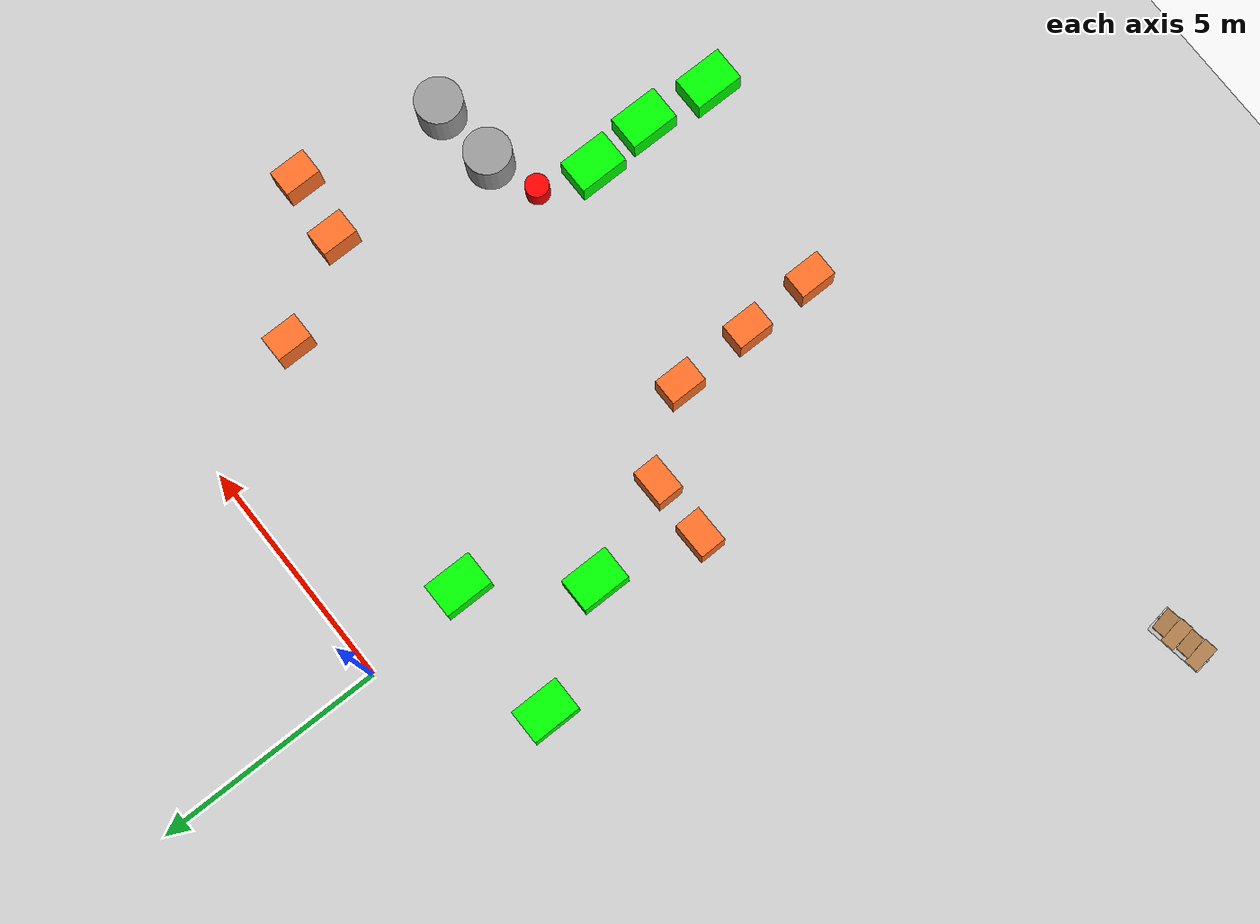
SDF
<sdf version="1.7">
 <world name="default">
  <model name="ground_plane">
   <static>1</static>
   <link name="link">
    <collision name="collision">
     <geometry><plane><normal>0 0 1</normal><size>100 100</size></plane></geometry>
     <surface>
      <contact><collide_bitmask>65535</collide_bitmask></contact>
      <friction><ode><mu>100</mu><mu2>50</mu2></ode></friction>
     </surface>
    </collision>
    <visual name="visual">
     <cast_shadows>0</cast_shadows>
     <geometry><plane><normal>0 0 1</normal><size>100 100</size></plane></geometry>
     <material>
      <script><uri>file://media/materials/scripts/gazebo.material</uri><name>Gazebo/Grey</name></script>
     </material>
    </visual>
   </link>
  </model>
  <model name="frc2016_chevaldefrise_clone">
   <link name="base">
    <inertial>
     <mass>10</mass>
     <pose>0 0 0.15672 0 -0 0</pose>
     <inertia><ixx>0.380221</ixx><ixy>0</ixy><ixz>0</ixz><iyy>1.43365</iyy><iyz>0</iyz><izz>1.64745</izz></inertia>
    </inertial>
    <visual name="platform">
     <pose>0 0 0.06968 0 -0 0</pose>
     <geometry><box><size>1.27 0.5969 0.003175</size></box></geometry>
    </visual>
    <collision name="platform">
     <pose>0 0 0.06968 0 -0 0</pose>
     <geometry><box><size>1.27 0.5969 0.003175</size></box></geometry>
    </collision>
    <visual name="bar">
     <pose>0 0 0.16855 0 1.5707 0</pose>
     <geometry><cylinder><radius>0.02108</radius><length>1.273</length></cylinder></geometry>
    </visual>
    <collision name="bar">
     <pose>0 0 0.16855 0 1.5707 0</pose>
     <geometry><cylinder><radius>0.02108</radius><length>1.27</length></cylinder></geometry>
    </collision>
    <visual name="castor1">
     <pose>-0.45653 -0.16581 0.03175 0 -0 0</pose>
     <geometry><sphere><radius>0.03175</radius></sphere></geometry>
    </visual>
    <collision name="castor1">
     <pose>-0.45653 -0.16581 0.03175 0 -0 0</pose>
     <geometry><sphere><radius>0.03175</radius></sphere></geometry>
    </collision>
    <visual name="castor2">
     <pose>-0.27855 0.21408 0.03175 0 -0 0</pose>
     <geometry><sphere><radius>0.03175</radius></sphere></geometry>
    </visual>
    <collision name="castor2">
     <pose>-0.27855 0.21408 0.03175 0 -0 0</pose>
     <geometry><sphere><radius>0.03175</radius></sphere></geometry>
    </collision>
    <visual name="castor3">
     <pose>0.28191 0.21419 0.03175 0 -0 0</pose>
     <geometry><sphere><radius>0.03175</radius></sphere></geometry>
    </visual>
    <collision name="castor3">
     <pose>0.28191 0.21419 0.03175 0 -0 0</pose>
     <geometry><sphere><radius>0.03175</radius></sphere></geometry>
    </collision>
    <visual name="castor4">
     <pose>0.45965 -0.16602 0.03175 0 -0 0</pose>
     <geometry><sphere><radius>0.03175</radius></sphere></geometry>
    </visual>
    <collision name="castor4">
     <pose>0.45965 -0.16602 0.03175 0 -0 0</pose>
     <geometry><sphere><radius>0.03175</radius></sphere></geometry>
    </collision>
   </link>
   <link name="slant1">
    <pose>-0.4572 0.01307 0.1997 -0.39732 0 0</pose>
    <inertial>
     <pose>0 0.1 0 0 -0 0</pose>
     <mass>2</mass>
     <inertia>
      <ixx>0.0606857</ixx>
      <ixy>0</ixy>
      <ixz>0</ixz>
      <iyy>0.0148723</iyy>
      <iyz>0</iyz>
      <izz>0.0755042</izz>
     </inertia>
    </inertial>
    <visual name="visual">
     <geometry><box><size>0.29845 0.593285 0.0127</size></box></geometry>
     <material><script><name>Gazebo/WoodFloor</name><uri>__default__</uri></script></material>
    </visual>
    <collision name="collision"><geometry><box><size>0.29845 0.593285 0.0127</size></box></geometry></collision>
   </link>
   <link name="slant2">
    <pose>-0.1524 -0.01307 0.1997 0.39732 -0 0</pose>
    <inertial>
     <mass>2</mass>
     <pose>0 -0.1 0 0 -0 0</pose>
     <inertia>
      <ixx>0.0606857</ixx>
      <ixy>0</ixy>
      <ixz>0</ixz>
      <iyy>0.0148723</iyy>
      <iyz>0</iyz>
      <izz>0.0755042</izz>
     </inertia>
    </inertial>
    <visual name="visual">
     <geometry><box><size>0.29845 0.593285 0.0127</size></box></geometry>
     <material><script><name>Gazebo/WoodFloor</name><uri>__default__</uri></script></material>
    </visual>
    <collision name="collision"><geometry><box><size>0.29845 0.593285 0.0127</size></box></geometry></collision>
   </link>
   <link name="slant3">
    <pose>0.1524 0.01307 0.1997 -0.39732 0 0</pose>
    <inertial>
     <pose>0 0.1 0 0 -0 0</pose>
     <mass>2</mass>
     <inertia>
      <ixx>0.0606857</ixx>
      <ixy>0</ixy>
      <ixz>0</ixz>
      <iyy>0.0148723</iyy>
      <iyz>0</iyz>
      <izz>0.0755042</izz>
     </inertia>
    </inertial>
    <visual name="visual">
     <geometry><box><size>0.29845 0.593285 0.0127</size></box></geometry>
     <material><script><name>Gazebo/WoodFloor</name><uri>__default__</uri></script></material>
    </visual>
    <collision name="collision"><geometry><box><size>0.29845 0.593285 0.0127</size></box></geometry></collision>
   </link>
   <link name="slant4">
    <pose>0.4572 -0.01307 0.1997 0.39732 -0 0</pose>
    <inertial>
     <pose>0 -0.1 0 0 -0 0</pose>
     <mass>2</mass>
     <inertia>
      <ixx>0.0606857</ixx>
      <ixy>0</ixy>
      <ixz>0</ixz>
      <iyy>0.0148723</iyy>
      <iyz>0</iyz>
      <izz>0.0755042</izz>
     </inertia>
    </inertial>
    <visual name="visual">
     <geometry><box><size>0.29845 0.593285 0.0127</size></box></geometry>
     <material><script><name>Gazebo/WoodFloor</name><uri>__default__</uri></script></material>
    </visual>
    <collision name="collision"><geometry><box><size>0.29845 0.593285 0.0127</size></box></geometry></collision>
   </link>
   <joint name="slant1_joint" type="revolute">
    <parent>base</parent>
    <child>slant1</child>
    <axis>
     <xyz>1 0 0</xyz>
     <limit><lower>0</lower><upper>1.5707</upper></limit>
     <dynamics><spring_reference>0</spring_reference><spring_stiffness>0</spring_stiffness></dynamics>
    </axis>
   </joint>
   <joint name="slant2_joint" type="revolute">
    <parent>base</parent>
    <child>slant2</child>
    <axis>
     <xyz>1 0 0</xyz>
     <limit><lower>-1.5707</lower><upper>0</upper></limit>
     <dynamics><spring_reference>0</spring_reference><spring_stiffness>0</spring_stiffness></dynamics>
    </axis>
   </joint>
   <joint name="slant3_joint" type="revolute">
    <parent>base</parent>
    <child>slant3</child>
    <axis>
     <xyz>1 0 0</xyz>
     <limit><lower>0</lower><upper>1.5707</upper></limit>
     <dynamics><spring_reference>0</spring_reference><spring_stiffness>0</spring_stiffness></dynamics>
    </axis>
   </joint>
   <joint name="slant4_joint" type="revolute">
    <parent>base</parent>
    <child>slant4</child>
    <axis>
     <xyz>1 0 0</xyz>
     <limit><lower>-1.5707</lower><upper>0</upper></limit>
     <dynamics><spring_reference>0</spring_reference><spring_stiffness>0</spring_stiffness></dynamics>
    </axis>
   </joint>
   <pose>-9.26855 -12.7493 -0 0 0 -2.97856</pose>
  </model>
  <model name="green_box_3">
   <link name="link">
    <inertial>
     <mass>1</mass>
     <inertia>
      <ixx>0.166667</ixx>
      <ixy>0</ixy>
      <ixz>0</ixz>
      <iyy>0.166667</iyy>
      <iyz>0</iyz>
      <izz>0.166667</izz>
     </inertia>
    </inertial>
    <visual name="visual">
     <geometry><box><size>0.75 1.07 0.63</size></box></geometry>
     <material>
      <script><name>Gazebo/Grey</name><uri>file://media/materials/scripts/gazebo.material</uri></script>
      <shader type="pixel"><normal_map>__default__</normal_map></shader>
      <ambient>0 1 0 1</ambient>
      <diffuse>0 1 0 1</diffuse>
      <specular>0.01 0.01 0.01 1</specular>
      <emissive>0 0 0 1</emissive>
     </material>
    </visual>
    <collision name="collision">
     <geometry><box><size>0.84 1 0.78</size></box></geometry>
     <surface>
      <friction>
       <ode><mu>1</mu><mu2>1</mu2><fdir1>0 0 0</fdir1><slip1>0</slip1><slip2>0</slip2></ode>
       <torsional>
        <coefficient>1</coefficient>
        <patch_radius>0</patch_radius>
        <surface_radius>0</surface_radius>
        <use_patch_radius>1</use_patch_radius>
        <ode><slip>0</slip></ode>
       </torsional>
      </friction>
      <bounce><restitution_coefficient>0</restitution_coefficient><threshold>1e+06</threshold></bounce>
      <contact>
       <collide_without_contact>0</collide_without_contact>
       <collide_without_contact_bitmask>1</collide_without_contact_bitmask>
       <collide_bitmask>1</collide_bitmask>
       <ode>
        <soft_cfm>0</soft_cfm>
        <soft_erp>0.2</soft_erp>
        <kp>1e+13</kp>
        <kd>1</kd>
        <max_vel>0.01</max_vel>
        <min_depth>0</min_depth>
       </ode>
       <bullet>
        <split_impulse>1</split_impulse>
        <split_impulse_penetration_threshold>-0.01</split_impulse_penetration_threshold>
        <soft_cfm>0</soft_cfm>
        <soft_erp>0.2</soft_erp>
        <kp>1e+13</kp>
        <kd>1</kd>
       </bullet>
      </contact>
     </surface>
    </collision>
   </link>
   <static>0</static>
   <pose>-2.69695 -2.19797 0.39 0 -0 0</pose>
  </model>
  <model name="green_box_4">
   <link name="link">
    <inertial>
     <mass>1</mass>
     <inertia>
      <ixx>0.166667</ixx>
      <ixy>0</ixy>
      <ixz>0</ixz>
      <iyy>0.166667</iyy>
      <iyz>0</iyz>
      <izz>0.166667</izz>
     </inertia>
    </inertial>
    <visual name="visual">
     <geometry><box><size>0.75 1.07 0.63</size></box></geometry>
     <material>
      <script><name>Gazebo/Grey</name><uri>file://media/materials/scripts/gazebo.material</uri></script>
      <shader type="pixel"><normal_map>__default__</normal_map></shader>
      <ambient>0 1 0 1</ambient>
      <diffuse>0 1 0 1</diffuse>
      <specular>0.01 0.01 0.01 1</specular>
      <emissive>0 0 0 1</emissive>
     </material>
    </visual>
    <collision name="collision">
     <geometry><box><size>0.84 1 0.78</size></box></geometry>
     <surface>
      <friction>
       <ode><mu>1</mu><mu2>1</mu2><fdir1>0 0 0</fdir1><slip1>0</slip1><slip2>0</slip2></ode>
       <torsional>
        <coefficient>1</coefficient>
        <patch_radius>0</patch_radius>
        <surface_radius>0</surface_radius>
        <use_patch_radius>1</use_patch_radius>
        <ode><slip>0</slip></ode>
       </torsional>
      </friction>
      <bounce><restitution_coefficient>0</restitution_coefficient><threshold>1e+06</threshold></bounce>
      <contact>
       <collide_without_contact>0</collide_without_contact>
       <collide_without_contact_bitmask>1</collide_without_contact_bitmask>
       <collide_bitmask>1</collide_bitmask>
       <ode>
        <soft_cfm>0</soft_cfm>
        <soft_erp>0.2</soft_erp>
        <kp>1e+13</kp>
        <kd>1</kd>
        <max_vel>0.01</max_vel>
        <min_depth>0</min_depth>
       </ode>
       <bullet>
        <split_impulse>1</split_impulse>
        <split_impulse_penetration_threshold>-0.01</split_impulse_penetration_threshold>
        <soft_cfm>0</soft_cfm>
        <soft_erp>0.2</soft_erp>
        <kp>1e+13</kp>
        <kd>1</kd>
       </bullet>
      </contact>
     </surface>
    </collision>
   </link>
   <static>0</static>
   <pose>0.261168 -2.36344 0.39 0 -0 0</pose>
  </model>
  <model name="green_box_5">
   <link name="link">
    <inertial>
     <mass>1</mass>
     <inertia>
      <ixx>0.166667</ixx>
      <ixy>0</ixy>
      <ixz>0</ixz>
      <iyy>0.166667</iyy>
      <iyz>0</iyz>
      <izz>0.166667</izz>
     </inertia>
    </inertial>
    <visual name="visual">
     <geometry><box><size>0.75 1.07 0.63</size></box></geometry>
     <material>
      <script><name>Gazebo/Grey</name><uri>file://media/materials/scripts/gazebo.material</uri></script>
      <shader type="pixel"><normal_map>__default__</normal_map></shader>
      <ambient>0 1 0 1</ambient>
      <diffuse>0 1 0 1</diffuse>
      <specular>0.01 0.01 0.01 1</specular>
      <emissive>0 0 0 1</emissive>
     </material>
    </visual>
    <collision name="collision">
     <geometry><box><size>0.84 1 0.78</size></box></geometry>
     <surface>
      <friction>
       <ode><mu>1</mu><mu2>1</mu2><fdir1>0 0 0</fdir1><slip1>0</slip1><slip2>0</slip2></ode>
       <torsional>
        <coefficient>1</coefficient>
        <patch_radius>0</patch_radius>
        <surface_radius>0</surface_radius>
        <use_patch_radius>1</use_patch_radius>
        <ode><slip>0</slip></ode>
       </torsional>
      </friction>
      <bounce><restitution_coefficient>0</restitution_coefficient><threshold>1e+06</threshold></bounce>
      <contact>
       <collide_without_contact>0</collide_without_contact>
       <collide_without_contact_bitmask>1</collide_without_contact_bitmask>
       <collide_bitmask>1</collide_bitmask>
       <ode>
        <soft_cfm>0</soft_cfm>
        <soft_erp>0.2</soft_erp>
        <kp>1e+13</kp>
        <kd>1</kd>
        <max_vel>0.01</max_vel>
        <min_depth>0</min_depth>
       </ode>
       <bullet>
        <split_impulse>1</split_impulse>
        <split_impulse_penetration_threshold>-0.01</split_impulse_penetration_threshold>
        <soft_cfm>0</soft_cfm>
        <soft_erp>0.2</soft_erp>
        <kp>1e+13</kp>
        <kd>1</kd>
       </bullet>
      </contact>
     </surface>
    </collision>
   </link>
   <static>0</static>
   <pose>-1.30017 -4.4988 0.39 0 -0 0</pose>
  </model>
  <model name="orange_box_1_clone_0">
   <link name="link">
    <inertial>
     <mass>1</mass>
     <inertia>
      <ixx>0.166667</ixx>
      <ixy>0</ixy>
      <ixz>0</ixz>
      <iyy>0.166667</iyy>
      <iyz>0</iyz>
      <izz>0.166667</izz>
     </inertia>
    </inertial>
    <visual name="visual">
     <geometry><box><size>0.57 0.8 0.8</size></box></geometry>
     <material>
      <script><name>Gazebo/Grey</name><uri>file://media/materials/scripts/gazebo.material</uri></script>
      <shader type="pixel"><normal_map>__default__</normal_map></shader>
      <ambient>0.698 0.369 0.176 1</ambient>
      <diffuse>1 0.435 0.153 1</diffuse>
      <specular>0.698 0.396 0.133 1</specular>
      <emissive>0.698 0.427 0.114 1</emissive>
     </material>
    </visual>
    <collision name="collision">
     <geometry><box><size>1 1 1</size></box></geometry>
     <surface>
      <friction>
       <ode><mu>1</mu><mu2>1</mu2><fdir1>0 0 0</fdir1><slip1>0</slip1><slip2>0</slip2></ode>
       <torsional>
        <coefficient>1</coefficient>
        <patch_radius>0</patch_radius>
        <surface_radius>0</surface_radius>
        <use_patch_radius>1</use_patch_radius>
        <ode><slip>0</slip></ode>
       </torsional>
      </friction>
      <bounce><restitution_coefficient>0</restitution_coefficient><threshold>1e+06</threshold></bounce>
      <contact>
       <collide_without_contact>0</collide_without_contact>
       <collide_without_contact_bitmask>1</collide_without_contact_bitmask>
       <collide_bitmask>1</collide_bitmask>
       <ode>
        <soft_cfm>0</soft_cfm>
        <soft_erp>0.2</soft_erp>
        <kp>1e+13</kp>
        <kd>1</kd>
        <max_vel>0.01</max_vel>
        <min_depth>0</min_depth>
       </ode>
       <bullet>
        <split_impulse>1</split_impulse>
        <split_impulse_penetration_threshold>-0.01</split_impulse_penetration_threshold>
        <soft_cfm>0</soft_cfm>
        <soft_erp>0.2</soft_erp>
        <kp>1e+13</kp>
        <kd>1</kd>
       </bullet>
      </contact>
     </surface>
    </collision>
   </link>
   <static>0</static>
   <pose>-1.87524 -6.63574 0.499995 -0 -1e-05 -1.55739</pose>
  </model>
  <model name="orange_box_1_clone_1">
   <link name="link">
    <inertial>
     <mass>1</mass>
     <inertia>
      <ixx>0.166667</ixx>
      <ixy>0</ixy>
      <ixz>0</ixz>
      <iyy>0.166667</iyy>
      <iyz>0</iyz>
      <izz>0.166667</izz>
     </inertia>
    </inertial>
    <visual name="visual">
     <geometry><box><size>0.57 0.8 0.8</size></box></geometry>
     <material>
      <script><name>Gazebo/Grey</name><uri>file://media/materials/scripts/gazebo.material</uri></script>
      <shader type="pixel"><normal_map>__default__</normal_map></shader>
      <ambient>0.698 0.369 0.176 1</ambient>
      <diffuse>1 0.435 0.153 1</diffuse>
      <specular>0.698 0.396 0.133 1</specular>
      <emissive>0.698 0.427 0.114 1</emissive>
     </material>
    </visual>
    <collision name="collision">
     <geometry><box><size>1 1 1</size></box></geometry>
     <surface>
      <friction>
       <ode><mu>1</mu><mu2>1</mu2><fdir1>0 0 0</fdir1><slip1>0</slip1><slip2>0</slip2></ode>
       <torsional>
        <coefficient>1</coefficient>
        <patch_radius>0</patch_radius>
        <surface_radius>0</surface_radius>
        <use_patch_radius>1</use_patch_radius>
        <ode><slip>0</slip></ode>
       </torsional>
      </friction>
      <bounce><restitution_coefficient>0</restitution_coefficient><threshold>1e+06</threshold></bounce>
      <contact>
       <collide_without_contact>0</collide_without_contact>
       <collide_without_contact_bitmask>1</collide_without_contact_bitmask>
       <collide_bitmask>1</collide_bitmask>
       <ode>
        <soft_cfm>0</soft_cfm>
        <soft_erp>0.2</soft_erp>
        <kp>1e+13</kp>
        <kd>1</kd>
        <max_vel>0.01</max_vel>
        <min_depth>0</min_depth>
       </ode>
       <bullet>
        <split_impulse>1</split_impulse>
        <split_impulse_penetration_threshold>-0.01</split_impulse_penetration_threshold>
        <soft_cfm>0</soft_cfm>
        <soft_erp>0.2</soft_erp>
        <kp>1e+13</kp>
        <kd>1</kd>
       </bullet>
      </contact>
     </surface>
    </collision>
   </link>
   <static>0</static>
   <pose>-0.560539 -6.63573 0.499995 -0 -1e-05 -1.55739</pose>
  </model>
  <model name="orange_box_2">
   <link name="link">
    <inertial>
     <mass>1</mass>
     <inertia>
      <ixx>0.166667</ixx>
      <ixy>0</ixy>
      <ixz>0</ixz>
      <iyy>0.166667</iyy>
      <iyz>0</iyz>
      <izz>0.166667</izz>
     </inertia>
    </inertial>
    <visual name="visual">
     <geometry><box><size>0.57 0.8 0.8</size></box></geometry>
     <material>
      <script><name>Gazebo/Grey</name><uri>file://media/materials/scripts/gazebo.material</uri></script>
      <shader type="pixel"><normal_map>__default__</normal_map></shader>
      <ambient>0.698 0.369 0.176 1</ambient>
      <diffuse>1 0.435 0.153 1</diffuse>
      <specular>0.698 0.396 0.133 1</specular>
      <emissive>0.698 0.427 0.114 1</emissive>
     </material>
    </visual>
    <collision name="collision">
     <geometry><box><size>1 1 1</size></box></geometry>
     <surface>
      <friction>
       <ode><mu>1</mu><mu2>1</mu2><fdir1>0 0 0</fdir1><slip1>0</slip1><slip2>0</slip2></ode>
       <torsional>
        <coefficient>1</coefficient>
        <patch_radius>0</patch_radius>
        <surface_radius>0</surface_radius>
        <use_patch_radius>1</use_patch_radius>
        <ode><slip>0</slip></ode>
       </torsional>
      </friction>
      <bounce><restitution_coefficient>0</restitution_coefficient><threshold>1e+06</threshold></bounce>
      <contact>
       <collide_without_contact>0</collide_without_contact>
       <collide_without_contact_bitmask>1</collide_without_contact_bitmask>
       <collide_bitmask>1</collide_bitmask>
       <ode>
        <soft_cfm>0</soft_cfm>
        <soft_erp>0.2</soft_erp>
        <kp>1e+13</kp>
        <kd>1</kd>
        <max_vel>0.01</max_vel>
        <min_depth>0</min_depth>
       </ode>
       <bullet>
        <split_impulse>1</split_impulse>
        <split_impulse_penetration_threshold>-0.01</split_impulse_penetration_threshold>
        <soft_cfm>0</soft_cfm>
        <soft_erp>0.2</soft_erp>
        <kp>1e+13</kp>
        <kd>1</kd>
       </bullet>
      </contact>
     </surface>
    </collision>
   </link>
   <static>0</static>
   <pose>0.71306 -8.19746 0.5 0 -0 0</pose>
  </model>
  <model name="orange_box_3">
   <link name="link">
    <inertial>
     <mass>1</mass>
     <inertia>
      <ixx>0.166667</ixx>
      <ixy>0</ixy>
      <ixz>0</ixz>
      <iyy>0.166667</iyy>
      <iyz>0</iyz>
      <izz>0.166667</izz>
     </inertia>
    </inertial>
    <visual name="visual">
     <geometry><box><size>0.57 0.8 0.8</size></box></geometry>
     <material>
      <script><name>Gazebo/Grey</name><uri>file://media/materials/scripts/gazebo.material</uri></script>
      <shader type="pixel"><normal_map>__default__</normal_map></shader>
      <ambient>0.698 0.369 0.176 1</ambient>
      <diffuse>1 0.435 0.153 1</diffuse>
      <specular>0.698 0.396 0.133 1</specular>
      <emissive>0.698 0.427 0.114 1</emissive>
     </material>
    </visual>
    <collision name="collision">
     <geometry><box><size>1 1 1</size></box></geometry>
     <surface>
      <friction>
       <ode><mu>1</mu><mu2>1</mu2><fdir1>0 0 0</fdir1><slip1>0</slip1><slip2>0</slip2></ode>
       <torsional>
        <coefficient>1</coefficient>
        <patch_radius>0</patch_radius>
        <surface_radius>0</surface_radius>
        <use_patch_radius>1</use_patch_radius>
        <ode><slip>0</slip></ode>
       </torsional>
      </friction>
      <bounce><restitution_coefficient>0</restitution_coefficient><threshold>1e+06</threshold></bounce>
      <contact>
       <collide_without_contact>0</collide_without_contact>
       <collide_without_contact_bitmask>1</collide_without_contact_bitmask>
       <collide_bitmask>1</collide_bitmask>
       <ode>
        <soft_cfm>0</soft_cfm>
        <soft_erp>0.2</soft_erp>
        <kp>1e+13</kp>
        <kd>1</kd>
        <max_vel>0.01</max_vel>
        <min_depth>0</min_depth>
       </ode>
       <bullet>
        <split_impulse>1</split_impulse>
        <split_impulse_penetration_threshold>-0.01</split_impulse_penetration_threshold>
        <soft_cfm>0</soft_cfm>
        <soft_erp>0.2</soft_erp>
        <kp>1e+13</kp>
        <kd>1</kd>
       </bullet>
      </contact>
     </surface>
    </collision>
   </link>
   <static>0</static>
   <pose>0.754165 -9.92309 0.5 0 -0 0</pose>
  </model>
  <model name="orange_box_4">
   <link name="link">
    <inertial>
     <mass>1</mass>
     <inertia>
      <ixx>0.166667</ixx>
      <ixy>0</ixy>
      <ixz>0</ixz>
      <iyy>0.166667</iyy>
      <iyz>0</iyz>
      <izz>0.166667</izz>
     </inertia>
    </inertial>
    <visual name="visual">
     <geometry><box><size>0.57 0.8 0.8</size></box></geometry>
     <material>
      <script><name>Gazebo/Grey</name><uri>file://media/materials/scripts/gazebo.material</uri></script>
      <shader type="pixel"><normal_map>__default__</normal_map></shader>
      <ambient>0.698 0.369 0.176 1</ambient>
      <diffuse>1 0.435 0.153 1</diffuse>
      <specular>0.698 0.396 0.133 1</specular>
      <emissive>0.698 0.427 0.114 1</emissive>
     </material>
    </visual>
    <collision name="collision">
     <geometry><box><size>1 1 1</size></box></geometry>
     <surface>
      <friction>
       <ode><mu>1</mu><mu2>1</mu2><fdir1>0 0 0</fdir1><slip1>0</slip1><slip2>0</slip2></ode>
       <torsional>
        <coefficient>1</coefficient>
        <patch_radius>0</patch_radius>
        <surface_radius>0</surface_radius>
        <use_patch_radius>1</use_patch_radius>
        <ode><slip>0</slip></ode>
       </torsional>
      </friction>
      <bounce><restitution_coefficient>0</restitution_coefficient><threshold>1e+06</threshold></bounce>
      <contact>
       <collide_without_contact>0</collide_without_contact>
       <collide_without_contact_bitmask>1</collide_without_contact_bitmask>
       <collide_bitmask>1</collide_bitmask>
       <ode>
        <soft_cfm>0</soft_cfm>
        <soft_erp>0.2</soft_erp>
        <kp>1e+13</kp>
        <kd>1</kd>
        <max_vel>0.01</max_vel>
        <min_depth>0</min_depth>
       </ode>
       <bullet>
        <split_impulse>1</split_impulse>
        <split_impulse_penetration_threshold>-0.01</split_impulse_penetration_threshold>
        <soft_cfm>0</soft_cfm>
        <soft_erp>0.2</soft_erp>
        <kp>1e+13</kp>
        <kd>1</kd>
       </bullet>
      </contact>
     </surface>
    </collision>
   </link>
   <static>0</static>
   <pose>0.79527 -11.525 0.5 0 -0 0</pose>
  </model>
  <model name="green_box_7">
   <link name="link">
    <inertial>
     <mass>1</mass>
     <inertia>
      <ixx>0.166667</ixx>
      <ixy>0</ixy>
      <ixz>0</ixz>
      <iyy>0.166667</iyy>
      <iyz>0</iyz>
      <izz>0.166667</izz>
     </inertia>
    </inertial>
    <visual name="visual">
     <geometry><box><size>0.75 1.07 0.63</size></box></geometry>
     <material>
      <script><name>Gazebo/Grey</name><uri>file://media/materials/scripts/gazebo.material</uri></script>
      <shader type="pixel"><normal_map>__default__</normal_map></shader>
      <ambient>0 1 0 1</ambient>
      <diffuse>0 1 0 1</diffuse>
      <specular>0.01 0.01 0.01 1</specular>
      <emissive>0 0 0 1</emissive>
     </material>
    </visual>
    <collision name="collision">
     <geometry><box><size>0.84 1 0.78</size></box></geometry>
     <surface>
      <friction>
       <ode><mu>1</mu><mu2>1</mu2><fdir1>0 0 0</fdir1><slip1>0</slip1><slip2>0</slip2></ode>
       <torsional>
        <coefficient>1</coefficient>
        <patch_radius>0</patch_radius>
        <surface_radius>0</surface_radius>
        <use_patch_radius>1</use_patch_radius>
        <ode><slip>0</slip></ode>
       </torsional>
      </friction>
      <bounce><restitution_coefficient>0</restitution_coefficient><threshold>1e+06</threshold></bounce>
      <contact>
       <collide_without_contact>0</collide_without_contact>
       <collide_without_contact_bitmask>1</collide_without_contact_bitmask>
       <collide_bitmask>1</collide_bitmask>
       <ode>
        <soft_cfm>0</soft_cfm>
        <soft_erp>0.2</soft_erp>
        <kp>1e+13</kp>
        <kd>1</kd>
        <max_vel>0.01</max_vel>
        <min_depth>0</min_depth>
       </ode>
       <bullet>
        <split_impulse>1</split_impulse>
        <split_impulse_penetration_threshold>-0.01</split_impulse_penetration_threshold>
        <soft_cfm>0</soft_cfm>
        <soft_erp>0.2</soft_erp>
        <kp>1e+13</kp>
        <kd>1</kd>
       </bullet>
      </contact>
     </surface>
    </collision>
   </link>
   <static>0</static>
   <pose>5.32353 -9.63801 0.39 0 -0 0</pose>
  </model>
  <model name="green_box_8">
   <link name="link">
    <inertial>
     <mass>1</mass>
     <inertia>
      <ixx>0.166667</ixx>
      <ixy>0</ixy>
      <ixz>0</ixz>
      <iyy>0.166667</iyy>
      <iyz>0</iyz>
      <izz>0.166667</izz>
     </inertia>
    </inertial>
    <visual name="visual">
     <geometry><box><size>0.75 1.07 0.63</size></box></geometry>
     <material>
      <script><name>Gazebo/Grey</name><uri>file://media/materials/scripts/gazebo.material</uri></script>
      <shader type="pixel"><normal_map>__default__</normal_map></shader>
      <ambient>0 1 0 1</ambient>
      <diffuse>0 1 0 1</diffuse>
      <specular>0.01 0.01 0.01 1</specular>
      <emissive>0 0 0 1</emissive>
     </material>
    </visual>
    <collision name="collision">
     <geometry><box><size>0.84 1 0.78</size></box></geometry>
     <surface>
      <friction>
       <ode><mu>1</mu><mu2>1</mu2><fdir1>0 0 0</fdir1><slip1>0</slip1><slip2>0</slip2></ode>
       <torsional>
        <coefficient>1</coefficient>
        <patch_radius>0</patch_radius>
        <surface_radius>0</surface_radius>
        <use_patch_radius>1</use_patch_radius>
        <ode><slip>0</slip></ode>
       </torsional>
      </friction>
      <bounce><restitution_coefficient>0</restitution_coefficient><threshold>1e+06</threshold></bounce>
      <contact>
       <collide_without_contact>0</collide_without_contact>
       <collide_without_contact_bitmask>1</collide_without_contact_bitmask>
       <collide_bitmask>1</collide_bitmask>
       <ode>
        <soft_cfm>0</soft_cfm>
        <soft_erp>0.2</soft_erp>
        <kp>1e+13</kp>
        <kd>1</kd>
        <max_vel>0.01</max_vel>
        <min_depth>0</min_depth>
       </ode>
       <bullet>
        <split_impulse>1</split_impulse>
        <split_impulse_penetration_threshold>-0.01</split_impulse_penetration_threshold>
        <soft_cfm>0</soft_cfm>
        <soft_erp>0.2</soft_erp>
        <kp>1e+13</kp>
        <kd>1</kd>
       </bullet>
      </contact>
     </surface>
    </collision>
   </link>
   <static>0</static>
   <pose>5.4058 -10.995 0.39 0 -0 0</pose>
  </model>
  <model name="green_box_9">
   <link name="link">
    <inertial>
     <mass>1</mass>
     <inertia>
      <ixx>0.166667</ixx>
      <ixy>0</ixy>
      <ixz>0</ixz>
      <iyy>0.166667</iyy>
      <iyz>0</iyz>
      <izz>0.166667</izz>
     </inertia>
    </inertial>
    <visual name="visual">
     <geometry><box><size>0.75 1.07 0.63</size></box></geometry>
     <material>
      <script><name>Gazebo/Grey</name><uri>file://media/materials/scripts/gazebo.material</uri></script>
      <shader type="pixel"><normal_map>__default__</normal_map></shader>
      <ambient>0 1 0 1</ambient>
      <diffuse>0 1 0 1</diffuse>
      <specular>0.01 0.01 0.01 1</specular>
      <emissive>0 0 0 1</emissive>
     </material>
    </visual>
    <collision name="collision">
     <geometry><box><size>0.84 1 0.78</size></box></geometry>
     <surface>
      <friction>
       <ode><mu>1</mu><mu2>1</mu2><fdir1>0 0 0</fdir1><slip1>0</slip1><slip2>0</slip2></ode>
       <torsional>
        <coefficient>1</coefficient>
        <patch_radius>0</patch_radius>
        <surface_radius>0</surface_radius>
        <use_patch_radius>1</use_patch_radius>
        <ode><slip>0</slip></ode>
       </torsional>
      </friction>
      <bounce><restitution_coefficient>0</restitution_coefficient><threshold>1e+06</threshold></bounce>
      <contact>
       <collide_without_contact>0</collide_without_contact>
       <collide_without_contact_bitmask>1</collide_without_contact_bitmask>
       <collide_bitmask>1</collide_bitmask>
       <ode>
        <soft_cfm>0</soft_cfm>
        <soft_erp>0.2</soft_erp>
        <kp>1e+13</kp>
        <kd>1</kd>
        <max_vel>0.01</max_vel>
        <min_depth>0</min_depth>
       </ode>
       <bullet>
        <split_impulse>1</split_impulse>
        <split_impulse_penetration_threshold>-0.01</split_impulse_penetration_threshold>
        <soft_cfm>0</soft_cfm>
        <soft_erp>0.2</soft_erp>
        <kp>1e+13</kp>
        <kd>1</kd>
       </bullet>
      </contact>
     </surface>
    </collision>
   </link>
   <static>0</static>
   <pose>5.2403 -12.5149 0.39 0 -0 0</pose>
  </model>
  <model name="unit_cylinder">
   <link name="link">
    <inertial>
     <mass>1</mass>
     <inertia><ixx>0.145833</ixx><ixy>0</ixy><ixz>0</ixz><iyy>0.145833</iyy><iyz>0</iyz><izz>0.125</izz></inertia>
    </inertial>
    <visual name="visual">
     <geometry><cylinder><radius>0.5</radius><length>1</length></cylinder></geometry>
     <material>
      <script><name>Gazebo/Grey</name><uri>file://media/materials/scripts/gazebo.material</uri></script>
      <shader type="pixel"/>
     </material>
    </visual>
    <collision name="collision">
     <geometry><cylinder><radius>0.5</radius><length>1</length></cylinder></geometry>
     <surface>
      <friction>
       <ode><mu>1</mu><mu2>1</mu2><fdir1>0 0 0</fdir1><slip1>0</slip1><slip2>0</slip2></ode>
       <torsional>
        <coefficient>1</coefficient>
        <patch_radius>0</patch_radius>
        <surface_radius>0</surface_radius>
        <use_patch_radius>1</use_patch_radius>
        <ode><slip>0</slip></ode>
       </torsional>
      </friction>
      <bounce><restitution_coefficient>0</restitution_coefficient><threshold>1e+06</threshold></bounce>
      <contact>
       <collide_without_contact>0</collide_without_contact>
       <collide_without_contact_bitmask>1</collide_without_contact_bitmask>
       <collide_bitmask>1</collide_bitmask>
       <ode>
        <soft_cfm>0</soft_cfm>
        <soft_erp>0.2</soft_erp>
        <kp>1e+13</kp>
        <kd>1</kd>
        <max_vel>0.01</max_vel>
        <min_depth>0</min_depth>
       </ode>
       <bullet>
        <split_impulse>1</split_impulse>
        <split_impulse_penetration_threshold>-0.01</split_impulse_penetration_threshold>
        <soft_cfm>0</soft_cfm>
        <soft_erp>0.2</soft_erp>
        <kp>1e+13</kp>
        <kd>1</kd>
       </bullet>
      </contact>
     </surface>
    </collision>
   </link>
   <static>0</static>
   <pose>8.15818 -7.95376 0.499991 0 -0 0</pose>
  </model>
  <model name="unit_cylinder_0">
   <link name="link">
    <inertial>
     <mass>1</mass>
     <inertia><ixx>0.145833</ixx><ixy>0</ixy><ixz>0</ixz><iyy>0.145833</iyy><iyz>0</iyz><izz>0.125</izz></inertia>
    </inertial>
    <visual name="visual">
     <geometry><cylinder><radius>0.5</radius><length>1</length></cylinder></geometry>
     <material>
      <script><name>Gazebo/Grey</name><uri>file://media/materials/scripts/gazebo.material</uri></script>
      <shader type="pixel"/>
     </material>
    </visual>
    <collision name="collision">
     <geometry><cylinder><radius>0.5</radius><length>1</length></cylinder></geometry>
     <surface>
      <friction>
       <ode><mu>1</mu><mu2>1</mu2><fdir1>0 0 0</fdir1><slip1>0</slip1><slip2>0</slip2></ode>
       <torsional>
        <coefficient>1</coefficient>
        <patch_radius>0</patch_radius>
        <surface_radius>0</surface_radius>
        <use_patch_radius>1</use_patch_radius>
        <ode><slip>0</slip></ode>
       </torsional>
      </friction>
      <bounce><restitution_coefficient>0</restitution_coefficient><threshold>1e+06</threshold></bounce>
      <contact>
       <collide_without_contact>0</collide_without_contact>
       <collide_without_contact_bitmask>1</collide_without_contact_bitmask>
       <collide_bitmask>1</collide_bitmask>
       <ode>
        <soft_cfm>0</soft_cfm>
        <soft_erp>0.2</soft_erp>
        <kp>1e+13</kp>
        <kd>1</kd>
        <max_vel>0.01</max_vel>
        <min_depth>0</min_depth>
       </ode>
       <bullet>
        <split_impulse>1</split_impulse>
        <split_impulse_penetration_threshold>-0.01</split_impulse_penetration_threshold>
        <soft_cfm>0</soft_cfm>
        <soft_erp>0.2</soft_erp>
        <kp>1e+13</kp>
        <kd>1</kd>
       </bullet>
      </contact>
     </surface>
    </collision>
   </link>
   <static>0</static>
   <pose>6.72034 -8.07799 0.5 0 -0 0</pose>
  </model>
  <model name="cylinder_3_0">
   <link name="link">
    <inertial>
     <mass>0.89</mass>
     <inertia>
      <ixx>0.129792</ixx>
      <ixy>0</ixy>
      <ixz>0</ixz>
      <iyy>0.129792</iyy>
      <iyz>0</iyz>
      <izz>0.11125</izz>
     </inertia>
    </inertial>
    <visual name="visual">
     <geometry><cylinder><radius>0.25</radius><length>0.54</length></cylinder></geometry>
     <material>
      <script><name>Gazebo/Grey</name><uri>file://media/materials/scripts/gazebo.material</uri></script>
      <shader type="pixel"><normal_map>__default__</normal_map></shader>
      <ambient>1 0 0 1</ambient>
      <diffuse>0.7 0.7 0.7 1</diffuse>
      <specular>0.01 0.01 0.01 1</specular>
      <emissive>0 0 0 1</emissive>
     </material>
    </visual>
    <collision name="collision">
     <geometry><cylinder><radius>0.5</radius><length>1</length></cylinder></geometry>
     <surface>
      <friction>
       <ode><mu>1</mu><mu2>1</mu2><fdir1>0 0 0</fdir1><slip1>0</slip1><slip2>0</slip2></ode>
       <torsional>
        <coefficient>1</coefficient>
        <patch_radius>0</patch_radius>
        <surface_radius>0</surface_radius>
        <use_patch_radius>1</use_patch_radius>
        <ode><slip>0</slip></ode>
       </torsional>
      </friction>
      <bounce><restitution_coefficient>0</restitution_coefficient><threshold>1e+06</threshold></bounce>
      <contact>
       <collide_without_contact>0</collide_without_contact>
       <collide_without_contact_bitmask>1</collide_without_contact_bitmask>
       <collide_bitmask>1</collide_bitmask>
       <ode>
        <soft_cfm>0</soft_cfm>
        <soft_erp>0.2</soft_erp>
        <kp>1e+13</kp>
        <kd>1</kd>
        <max_vel>0.01</max_vel>
        <min_depth>0</min_depth>
       </ode>
       <bullet>
        <split_impulse>1</split_impulse>
        <split_impulse_penetration_threshold>-0.01</split_impulse_penetration_threshold>
        <soft_cfm>0</soft_cfm>
        <soft_erp>0.2</soft_erp>
        <kp>1e+13</kp>
        <kd>1</kd>
       </bullet>
      </contact>
     </surface>
    </collision>
   </link>
   <static>0</static>
   <pose>5.61105 -8.44751 0.5 -0 -0 -0</pose>
  </model>
  <model name="orange_box_6">
   <link name="link">
    <inertial>
     <mass>1</mass>
     <inertia>
      <ixx>0.166667</ixx>
      <ixy>0</ixy>
      <ixz>0</ixz>
      <iyy>0.166667</iyy>
      <iyz>0</iyz>
      <izz>0.166667</izz>
     </inertia>
    </inertial>
    <visual name="visual">
     <geometry><box><size>0.57 0.8 0.8</size></box></geometry>
     <material>
      <script><name>Gazebo/Grey</name><uri>file://media/materials/scripts/gazebo.material</uri></script>
      <shader type="pixel"><normal_map>__default__</normal_map></shader>
      <ambient>0.698 0.369 0.176 1</ambient>
      <diffuse>1 0.435 0.153 1</diffuse>
      <specular>0.698 0.396 0.133 1</specular>
      <emissive>0.698 0.427 0.114 1</emissive>
     </material>
    </visual>
    <collision name="collision">
     <geometry><box><size>1 1 1</size></box></geometry>
     <surface>
      <friction>
       <ode><mu>1</mu><mu2>1</mu2><fdir1>0 0 0</fdir1><slip1>0</slip1><slip2>0</slip2></ode>
       <torsional>
        <coefficient>1</coefficient>
        <patch_radius>0</patch_radius>
        <surface_radius>0</surface_radius>
        <use_patch_radius>1</use_patch_radius>
        <ode><slip>0</slip></ode>
       </torsional>
      </friction>
      <bounce><restitution_coefficient>0</restitution_coefficient><threshold>1e+06</threshold></bounce>
      <contact>
       <collide_without_contact>0</collide_without_contact>
       <collide_without_contact_bitmask>1</collide_without_contact_bitmask>
       <collide_bitmask>1</collide_bitmask>
       <ode>
        <soft_cfm>0</soft_cfm>
        <soft_erp>0.2</soft_erp>
        <kp>1e+13</kp>
        <kd>1</kd>
        <max_vel>0.01</max_vel>
        <min_depth>0</min_depth>
       </ode>
       <bullet>
        <split_impulse>1</split_impulse>
        <split_impulse_penetration_threshold>-0.01</split_impulse_penetration_threshold>
        <soft_cfm>0</soft_cfm>
        <soft_erp>0.2</soft_erp>
        <kp>1e+13</kp>
        <kd>1</kd>
       </bullet>
      </contact>
     </surface>
    </collision>
   </link>
   <static>0</static>
   <pose>8.77445 -4.83264 0.5 0 -0 0</pose>
  </model>
  <model name="orange_box_7">
   <link name="link">
    <inertial>
     <mass>1</mass>
     <inertia>
      <ixx>0.166667</ixx>
      <ixy>0</ixy>
      <ixz>0</ixz>
      <iyy>0.166667</iyy>
      <iyz>0</iyz>
      <izz>0.166667</izz>
     </inertia>
    </inertial>
    <visual name="visual">
     <geometry><box><size>0.57 0.8 0.8</size></box></geometry>
     <material>
      <script><name>Gazebo/Grey</name><uri>file://media/materials/scripts/gazebo.material</uri></script>
      <shader type="pixel"><normal_map>__default__</normal_map></shader>
      <ambient>0.698 0.369 0.176 1</ambient>
      <diffuse>1 0.435 0.153 1</diffuse>
      <specular>0.698 0.396 0.133 1</specular>
      <emissive>0.698 0.427 0.114 1</emissive>
     </material>
    </visual>
    <collision name="collision">
     <geometry><box><size>1 1 1</size></box></geometry>
     <surface>
      <friction>
       <ode><mu>1</mu><mu2>1</mu2><fdir1>0 0 0</fdir1><slip1>0</slip1><slip2>0</slip2></ode>
       <torsional>
        <coefficient>1</coefficient>
        <patch_radius>0</patch_radius>
        <surface_radius>0</surface_radius>
        <use_patch_radius>1</use_patch_radius>
        <ode><slip>0</slip></ode>
       </torsional>
      </friction>
      <bounce><restitution_coefficient>0</restitution_coefficient><threshold>1e+06</threshold></bounce>
      <contact>
       <collide_without_contact>0</collide_without_contact>
       <collide_without_contact_bitmask>1</collide_without_contact_bitmask>
       <collide_bitmask>1</collide_bitmask>
       <ode>
        <soft_cfm>0</soft_cfm>
        <soft_erp>0.2</soft_erp>
        <kp>1e+13</kp>
        <kd>1</kd>
        <max_vel>0.01</max_vel>
        <min_depth>0</min_depth>
       </ode>
       <bullet>
        <split_impulse>1</split_impulse>
        <split_impulse_penetration_threshold>-0.01</split_impulse_penetration_threshold>
        <soft_cfm>0</soft_cfm>
        <soft_erp>0.2</soft_erp>
        <kp>1e+13</kp>
        <kd>1</kd>
       </bullet>
      </contact>
     </surface>
    </collision>
   </link>
   <static>0</static>
   <pose>7.3366 -4.66824 0.5 0 -0 0</pose>
  </model>
  <model name="orange_box_8">
   <link name="link">
    <inertial>
     <mass>1</mass>
     <inertia>
      <ixx>0.166667</ixx>
      <ixy>0</ixy>
      <ixz>0</ixz>
      <iyy>0.166667</iyy>
      <iyz>0</iyz>
      <izz>0.166667</izz>
     </inertia>
    </inertial>
    <visual name="visual">
     <geometry><box><size>0.57 0.8 0.8</size></box></geometry>
     <material>
      <script><name>Gazebo/Grey</name><uri>file://media/materials/scripts/gazebo.material</uri></script>
      <shader type="pixel"><normal_map>__default__</normal_map></shader>
      <ambient>0.698 0.369 0.176 1</ambient>
      <diffuse>1 0.435 0.153 1</diffuse>
      <specular>0.698 0.396 0.133 1</specular>
      <emissive>0.698 0.427 0.114 1</emissive>
     </material>
    </visual>
    <collision name="collision">
     <geometry><box><size>1 1 1</size></box></geometry>
     <surface>
      <friction>
       <ode><mu>1</mu><mu2>1</mu2><fdir1>0 0 0</fdir1><slip1>0</slip1><slip2>0</slip2></ode>
       <torsional>
        <coefficient>1</coefficient>
        <patch_radius>0</patch_radius>
        <surface_radius>0</surface_radius>
        <use_patch_radius>1</use_patch_radius>
        <ode><slip>0</slip></ode>
       </torsional>
      </friction>
      <bounce><restitution_coefficient>0</restitution_coefficient><threshold>1e+06</threshold></bounce>
      <contact>
       <collide_without_contact>0</collide_without_contact>
       <collide_without_contact_bitmask>1</collide_without_contact_bitmask>
       <collide_bitmask>1</collide_bitmask>
       <ode>
        <soft_cfm>0</soft_cfm>
        <soft_erp>0.2</soft_erp>
        <kp>1e+13</kp>
        <kd>1</kd>
        <max_vel>0.01</max_vel>
        <min_depth>0</min_depth>
       </ode>
       <bullet>
        <split_impulse>1</split_impulse>
        <split_impulse_penetration_threshold>-0.01</split_impulse_penetration_threshold>
        <soft_cfm>0</soft_cfm>
        <soft_erp>0.2</soft_erp>
        <kp>1e+13</kp>
        <kd>1</kd>
       </bullet>
      </contact>
     </surface>
    </collision>
   </link>
   <static>0</static>
   <pose>6.18621 -2.69587 0.5 0 -0 0</pose>
  </model>
 </world>
</sdf>
